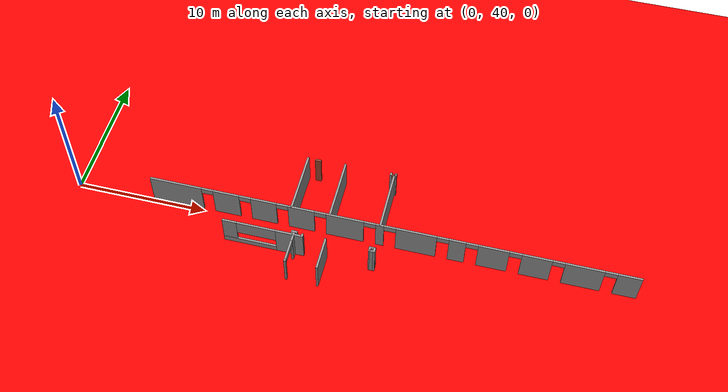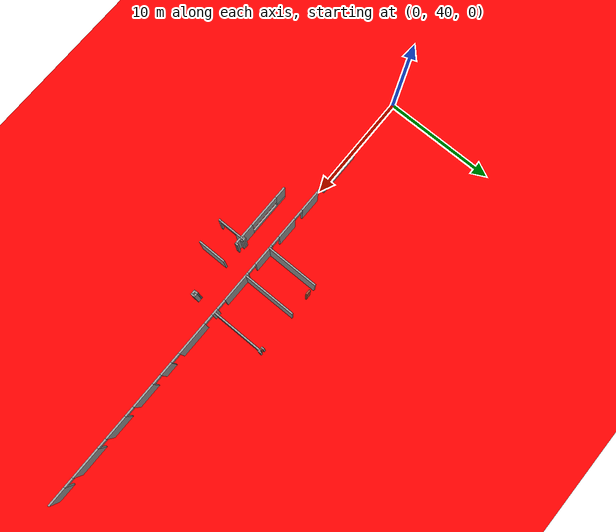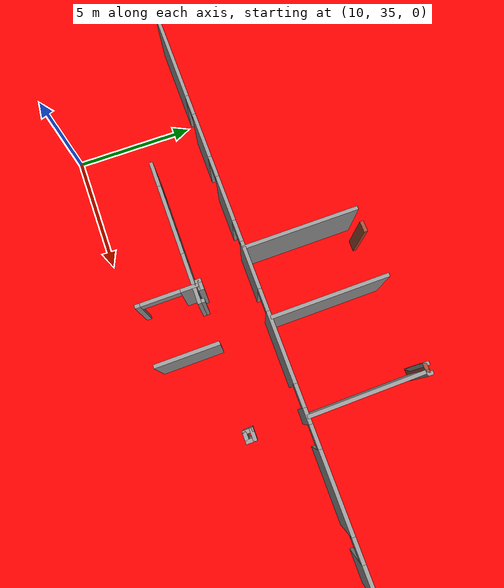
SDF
<sdf version="1.7">
 <world name="RaSpectLoc_ign">
  <model name="ground_plane">
   <static>1</static>
   <link name="link">
    <collision name="collision">
     <geometry><plane><normal>0 0 1</normal><size>100 100</size></plane></geometry>
     <surface><friction><ode><mu>100</mu><mu2>50</mu2></ode></friction></surface>
    </collision>
    <visual name="visual">
     <cast_shadows>0</cast_shadows>
     <geometry><plane><normal>0 0 1</normal><size>100 100</size></plane></geometry>
     <material><ambient>1 0 0 1</ambient><diffuse>1 0 0 1</diffuse><specular>0.1 0.1 0.1 1</specular></material>
    </visual>
   </link>
  </model>
  <model name="CVSSP">
   <pose>23.8714 24.094 0 0 -0 0</pose>
   <link name="Wall_21">
    <pose>-6.21845 12.8269 0 0 0 -1.57055</pose>
    <visual name="Wall_21_Visual_0">
     <pose>-0.893143 0 1.25 0 -0 0</pose>
     <geometry><box><size>0.719046 0.15 2.5</size></box></geometry>
     <material>
      <script><uri>file://media/materials/scripts/gazebo.material</uri><name>Gazebo/Grey</name></script>
      <ambient>0.588235 0.588235 0.588235 1</ambient>
     </material>
    </visual>
    <collision name="Wall_21_Collision_0">
     <geometry><box><size>0.719046 0.15 2.5</size></box></geometry>
     <pose>-0.893143 0 1.25 0 -0 0</pose>
    </collision>
    <visual name="Wall_21_Visual_1">
     <pose>1.15058 0 1.25 0 -0 0</pose>
     <geometry><box><size>0.204165 0.15 2.5</size></box></geometry>
     <material>
      <script><uri>file://media/materials/scripts/gazebo.material</uri><name>Gazebo/Grey</name></script>
      <ambient>0.588235 0.588235 0.588235 1</ambient>
     </material>
    </visual>
    <collision name="Wall_21_Collision_1">
     <geometry><box><size>0.204165 0.15 2.5</size></box></geometry>
     <pose>1.15058 0 1.25 0 -0 0</pose>
    </collision>
    <visual name="Wall_21_Visual_2">
     <pose>0.257441 0 2.25 0 -0 0</pose>
     <geometry><box><size>1.58212 0.15 0.5</size></box></geometry>
     <material>
      <script><uri>file://media/materials/scripts/gazebo.material</uri><name>Gazebo/Grey</name></script>
      <ambient>0.588235 0.588235 0.588235 1</ambient>
     </material>
    </visual>
    <collision name="Wall_21_Collision_2">
     <geometry><box><size>1.58212 0.15 0.5</size></box></geometry>
     <pose>0.257441 0 2.25 0 -0 0</pose>
    </collision>
   </link>
   <link name="Wall_25">
    <collision name="Wall_25_Collision">
     <geometry><box><size>2.54698 0.15 2.5</size></box></geometry>
     <pose>0 0 1.25 0 -0 0</pose>
    </collision>
    <visual name="Wall_25_Visual">
     <pose>0 0 1.25 0 -0 0</pose>
     <geometry><box><size>2.54698 0.15 2.5</size></box></geometry>
     <material>
      <script><uri>file://media/materials/scripts/gazebo.material</uri><name>Gazebo/Grey</name></script>
      <ambient>0.588235 0.588235 0.588235 1</ambient>
     </material>
    </visual>
    <pose>-3.87405 12.8463 0 0 -0 1.5708</pose>
   </link>
   <link name="Wall_315">
    <collision name="Wall_315_Collision">
     <geometry><box><size>4.75 0.15 2.5</size></box></geometry>
     <pose>0 0 1.25 0 -0 0</pose>
    </collision>
    <visual name="Wall_315_Visual">
     <pose>0 0 1.25 0 -0 0</pose>
     <geometry><box><size>4.75 0.15 2.5</size></box></geometry>
     <material>
      <script><uri>file://media/materials/scripts/gazebo.material</uri><name>Gazebo/Grey</name></script>
      <ambient>0.588235 0.588235 0.588235 1</ambient>
     </material>
    </visual>
    <pose>-7.00685 18.5251 0 0 -0 1.5708</pose>
   </link>
   <link name="Wall_318">
    <collision name="Wall_318_Collision">
     <geometry><box><size>4.79 0.15 2.5</size></box></geometry>
     <pose>0 0 1.25 0 -0 0</pose>
    </collision>
    <visual name="Wall_318_Visual">
     <pose>0 0 1.25 0 -0 0</pose>
     <geometry><box><size>4.79 0.15 2.5</size></box></geometry>
     <material>
      <script><uri>file://media/materials/scripts/gazebo.material</uri><name>Gazebo/Grey</name></script>
      <ambient>1 1 1 1</ambient>
     </material>
    </visual>
    <pose>-4.1133 18.5854 0 0 0 -1.5708</pose>
   </link>
   <link name="Wall_320">
    <collision name="Wall_320_Collision">
     <geometry><box><size>4.75 0.15 2.5</size></box></geometry>
     <pose>0 0 1.25 0 -0 0</pose>
    </collision>
    <visual name="Wall_320_Visual">
     <pose>0 0 1.25 0 -0 0</pose>
     <geometry><box><size>4.75 0.15 2.5</size></box></geometry>
     <material>
      <script><uri>file://media/materials/scripts/gazebo.material</uri><name>Gazebo/Grey</name></script>
      <ambient>0.588235 0.588235 0.588235 1</ambient>
     </material>
    </visual>
    <pose>-0.323303 18.5354 0 0 -0 1.5708</pose>
   </link>
   <link name="Wall_326">
    <collision name="Wall_326_Collision">
     <geometry><box><size>0.41 0.15 2.5</size></box></geometry>
     <pose>0 0 1.25 0 -0 0</pose>
    </collision>
    <visual name="Wall_326_Visual">
     <pose>0 0 1.25 0 -0 0</pose>
     <geometry><box><size>0.41 0.15 2.5</size></box></geometry>
     <material>
      <script><uri>file://media/materials/scripts/gazebo.material</uri><name>Gazebo/Bricks</name></script>
      <ambient>1 1 1 1</ambient>
     </material>
    </visual>
    <pose>-0.453303 20.8354 0 0 -0 3.14159</pose>
   </link>
   <link name="Wall_327">
    <collision name="Wall_327_Collision">
     <geometry><box><size>0.25 0.15 2.5</size></box></geometry>
     <pose>0 0 1.25 0 -0 0</pose>
    </collision>
    <visual name="Wall_327_Visual">
     <pose>0 0 1.25 0 -0 0</pose>
     <geometry><box><size>0.25 0.15 2.5</size></box></geometry>
     <material>
      <script><uri>file://media/materials/scripts/gazebo.material</uri><name>Gazebo/Grey</name></script>
      <ambient>1 1 1 1</ambient>
     </material>
    </visual>
    <pose>-0.583303 20.8854 0 0 -0 1.5708</pose>
   </link>
   <link name="Wall_329">
    <collision name="Wall_329_Collision">
     <geometry><box><size>0.25 0.15 2.5</size></box></geometry>
     <pose>0 0 1.25 0 -0 0</pose>
    </collision>
    <visual name="Wall_329_Visual">
     <pose>0 0 1.25 0 -0 0</pose>
     <geometry><box><size>0.25 0.15 2.5</size></box></geometry>
     <material>
      <script><uri>file://media/materials/scripts/gazebo.material</uri><name>Gazebo/Grey</name></script>
      <ambient>1 1 1 1</ambient>
     </material>
    </visual>
    <pose>-0.273303 20.8354 0 0 -0 0</pose>
   </link>
   <link name="Wall_330">
    <collision name="Wall_330_Collision">
     <geometry><box><size>0.25 0.15 2.5</size></box></geometry>
     <pose>0 0 1.25 0 -0 0</pose>
    </collision>
    <visual name="Wall_330_Visual">
     <pose>0 0 1.25 0 -0 0</pose>
     <geometry><box><size>0.25 0.15 2.5</size></box></geometry>
     <material>
      <script><uri>file://media/materials/scripts/gazebo.material</uri><name>Gazebo/Grey</name></script>
      <ambient>1 1 1 1</ambient>
     </material>
    </visual>
    <pose>-0.223303 20.8854 0 0 -0 1.5708</pose>
   </link>
   <link name="Wall_619">
    <collision name="Wall_619_Collision">
     <geometry><box><size>0.491176 0.15 2.5</size></box></geometry>
     <pose>0 0 1.25 0 -0 0</pose>
    </collision>
    <visual name="Wall_619_Visual">
     <pose>0 0 1.25 0 -0 0</pose>
     <geometry><box><size>0.491176 0.15 2.5</size></box></geometry>
     <material>
      <script><uri>file://media/materials/scripts/gazebo.material</uri><name>Gazebo/Grey</name></script>
      <ambient>1 1 1 1</ambient>
     </material>
    </visual>
    <pose>-0.431731 14.1578 0 0 -0 0</pose>
   </link>
   <link name="Wall_620">
    <collision name="Wall_620_Collision">
     <geometry><box><size>0.421785 0.15 2.5</size></box></geometry>
     <pose>0 0 1.25 0 -0 0</pose>
    </collision>
    <visual name="Wall_620_Visual">
     <pose>0 0 1.25 0 -0 0</pose>
     <geometry><box><size>0.421785 0.15 2.5</size></box></geometry>
     <material>
      <script><uri>file://media/materials/scripts/gazebo.material</uri><name>Gazebo/Grey</name></script>
      <ambient>1 1 1 1</ambient>
     </material>
    </visual>
    <pose>-0.261143 14.0219 0 0 0 -1.5708</pose>
   </link>
   <link name="Wall_621">
    <collision name="Wall_621_Collision">
     <geometry><box><size>0.479611 0.15 2.5</size></box></geometry>
     <pose>0 0 1.25 0 -0 0</pose>
    </collision>
    <visual name="Wall_621_Visual">
     <pose>0 0 1.25 0 -0 0</pose>
     <geometry><box><size>0.479611 0.15 2.5</size></box></geometry>
     <material>
      <script><uri>file://media/materials/scripts/gazebo.material</uri><name>Gazebo/Grey</name></script>
      <ambient>1 1 1 1</ambient>
     </material>
    </visual>
    <pose>-0.425949 13.8861 0 0 -0 3.14159</pose>
   </link>
   <link name="Wall_622">
    <collision name="Wall_622_Collision">
     <geometry><box><size>0.421846 0.15 2.5</size></box></geometry>
     <pose>0 0 1.25 0 -0 0</pose>
    </collision>
    <visual name="Wall_622_Visual">
     <pose>0 0 1.25 0 -0 0</pose>
     <geometry><box><size>0.421846 0.15 2.5</size></box></geometry>
     <material>
      <script><uri>file://media/materials/scripts/gazebo.material</uri><name>Gazebo/Grey</name></script>
      <ambient>1 1 1 1</ambient>
     </material>
    </visual>
    <pose>-0.593646 14.0219 0 0 -0 1.59207</pose>
   </link>
   <link name="Wall_624">
    <collision name="Wall_624_Collision">
     <geometry><box><size>0.291595 0.15 2.5</size></box></geometry>
     <pose>0 0 1.25 0 -0 0</pose>
    </collision>
    <visual name="Wall_624_Visual">
     <pose>0 0 1.25 0 -0 0</pose>
     <geometry><box><size>0.291595 0.15 2.5</size></box></geometry>
     <material>
      <script><uri>file://media/materials/scripts/gazebo.material</uri><name>Gazebo/Grey</name></script>
      <ambient>1 1 1 1</ambient>
     </material>
    </visual>
    <pose>-5.57863 13.9687 0 0 0 -1.5708</pose>
   </link>
   <link name="Wall_625">
    <pose>-8.55211 13.8979 0 0 -0 3.14159</pose>
    <visual name="Wall_625_Visual_0">
     <pose>-2.01383 0 1.25 0 -0 0</pose>
     <geometry><box><size>2.06931 0.15 2.5</size></box></geometry>
     <material>
      <script><uri>file://media/materials/scripts/gazebo.material</uri><name>Gazebo/Grey</name></script>
      <ambient>1 1 1 1</ambient>
     </material>
    </visual>
    <collision name="Wall_625_Collision_0">
     <geometry><box><size>2.06931 0.15 2.5</size></box></geometry>
     <pose>-2.01383 0 1.25 0 -0 0</pose>
    </collision>
    <visual name="Wall_625_Visual_1">
     <pose>1.03465 0 0.25 0 -0 0</pose>
     <geometry><box><size>4.02766 0.15 0.5</size></box></geometry>
     <material>
      <script><uri>file://media/materials/scripts/gazebo.material</uri><name>Gazebo/Grey</name></script>
      <ambient>1 1 1 1</ambient>
     </material>
    </visual>
    <collision name="Wall_625_Collision_1">
     <geometry><box><size>4.02766 0.15 0.5</size></box></geometry>
     <pose>1.03465 0 0.25 0 -0 0</pose>
    </collision>
    <visual name="Wall_625_Visual_2">
     <pose>2.51124 0 1.5 0 -0 0</pose>
     <geometry><box><size>1.07449 0.15 2</size></box></geometry>
     <material>
      <script><uri>file://media/materials/scripts/gazebo.material</uri><name>Gazebo/Grey</name></script>
      <ambient>1 1 1 1</ambient>
     </material>
    </visual>
    <collision name="Wall_625_Collision_2">
     <geometry><box><size>1.07449 0.15 2</size></box></geometry>
     <pose>2.51124 0 1.5 0 -0 0</pose>
    </collision>
    <visual name="Wall_625_Visual_3">
     <pose>0.497408 0 1.9 0 -0 0</pose>
     <geometry><box><size>2.95317 0.15 1.2</size></box></geometry>
     <material>
      <script><uri>file://media/materials/scripts/gazebo.material</uri><name>Gazebo/Grey</name></script>
      <ambient>1 1 1 1</ambient>
     </material>
    </visual>
    <collision name="Wall_625_Collision_3">
     <geometry><box><size>2.95317 0.15 1.2</size></box></geometry>
     <pose>0.497408 0 1.9 0 -0 0</pose>
    </collision>
   </link>
   <link name="Wall_628">
    <collision name="Wall_628_Collision">
     <geometry><box><size>0.251643 0.15 2.5</size></box></geometry>
     <pose>0 0 1.25 0 -0 0</pose>
    </collision>
    <visual name="Wall_628_Visual">
     <pose>0 0 1.25 0 -0 0</pose>
     <geometry><box><size>0.251643 0.15 2.5</size></box></geometry>
     <material>
      <script><uri>file://media/materials/scripts/gazebo.material</uri><name>Gazebo/Grey</name></script>
      <ambient>1 1 1 1</ambient>
     </material>
    </visual>
    <pose>-6.3574 14.1103 0 0 -0 1.5708</pose>
   </link>
   <link name="Wall_629">
    <collision name="Wall_629_Collision">
     <geometry><box><size>0.453417 0.15 2.5</size></box></geometry>
     <pose>0 0 1.25 0 -0 0</pose>
    </collision>
    <visual name="Wall_629_Visual">
     <pose>0 0 1.25 0 -0 0</pose>
     <geometry><box><size>0.453417 0.15 2.5</size></box></geometry>
     <material>
      <script><uri>file://media/materials/scripts/gazebo.material</uri><name>Gazebo/Grey</name></script>
      <ambient>1 1 1 1</ambient>
     </material>
    </visual>
    <pose>-6.20569 14.1608 0 0 -0 0</pose>
   </link>
   <link name="Wall_630">
    <collision name="Wall_630_Collision">
     <geometry><box><size>0.220797 0.15 2.5</size></box></geometry>
     <pose>0 0 1.25 0 -0 0</pose>
    </collision>
    <visual name="Wall_630_Visual">
     <pose>0 0 1.25 0 -0 0</pose>
     <geometry><box><size>0.220797 0.15 2.5</size></box></geometry>
     <material>
      <script><uri>file://media/materials/scripts/gazebo.material</uri><name>Gazebo/Grey</name></script>
      <ambient>1 1 1 1</ambient>
     </material>
    </visual>
    <pose>-6.05398 14.1255 0 0 0 -1.5708</pose>
   </link>
   <link name="Wall_663">
    <collision name="Wall_663_Collision">
     <geometry><box><size>0.456076 0.15 2.5</size></box></geometry>
     <pose>0 0 1.25 0 -0 0</pose>
    </collision>
    <visual name="Wall_663_Visual">
     <pose>0 0 1.25 0 -0 0</pose>
     <geometry><box><size>0.456076 0.15 2.5</size></box></geometry>
     <material>
      <script><uri>file://media/materials/scripts/gazebo.material</uri><name>Gazebo/Bricks</name></script>
      <ambient>1 1 1 1</ambient>
     </material>
    </visual>
    <pose>-6.21292 20.8145 0 0 -0 0</pose>
   </link>
   <link name="Wall_70">
    <pose>0.280393 16.1874 0 0 -0 3.14159</pose>
    <visual name="Wall_70_Visual_0">
     <pose>-17.3872 0 1.25 0 -0 0</pose>
     <geometry><box><size>1.72569 0.15 2.5</size></box></geometry>
     <material>
      <script><uri>file://media/materials/scripts/gazebo.material</uri><name>Gazebo/Grey</name></script>
      <ambient>0.588235 0.588235 0.588235 1</ambient>
     </material>
    </visual>
    <collision name="Wall_70_Collision_0">
     <geometry><box><size>1.72569 0.15 2.5</size></box></geometry>
     <pose>-17.3872 0 1.25 0 -0 0</pose>
    </collision>
    <visual name="Wall_70_Visual_1">
     <pose>-14.2239 0 1.25 0 -0 0</pose>
     <geometry><box><size>2.8009 0.15 2.5</size></box></geometry>
     <material>
      <script><uri>file://media/materials/scripts/gazebo.material</uri><name>Gazebo/Grey</name></script>
      <ambient>0.588235 0.588235 0.588235 1</ambient>
     </material>
    </visual>
    <collision name="Wall_70_Collision_1">
     <geometry><box><size>2.8009 0.15 2.5</size></box></geometry>
     <pose>-14.2239 0 1.25 0 -0 0</pose>
    </collision>
    <visual name="Wall_70_Visual_2">
     <pose>-10.8352 0 1.25 0 -0 0</pose>
     <geometry><box><size>2.17637 0.15 2.5</size></box></geometry>
     <material>
      <script><uri>file://media/materials/scripts/gazebo.material</uri><name>Gazebo/Grey</name></script>
      <ambient>0.588235 0.588235 0.588235 1</ambient>
     </material>
    </visual>
    <collision name="Wall_70_Collision_2">
     <geometry><box><size>2.17637 0.15 2.5</size></box></geometry>
     <pose>-10.8352 0 1.25 0 -0 0</pose>
    </collision>
    <visual name="Wall_70_Visual_3">
     <pose>-7.72416 0 1.25 0 -0 0</pose>
     <geometry><box><size>2.24576 0.15 2.5</size></box></geometry>
     <material>
      <script><uri>file://media/materials/scripts/gazebo.material</uri><name>Gazebo/Grey</name></script>
      <ambient>0.588235 0.588235 0.588235 1</ambient>
     </material>
    </visual>
    <collision name="Wall_70_Collision_3">
     <geometry><box><size>2.24576 0.15 2.5</size></box></geometry>
     <pose>-7.72416 0 1.25 0 -0 0</pose>
    </collision>
    <visual name="Wall_70_Visual_4">
     <pose>-5.08727 0 1.25 0 -0 0</pose>
     <geometry><box><size>1.22802 0.15 2.5</size></box></geometry>
     <material>
      <script><uri>file://media/materials/scripts/gazebo.material</uri><name>Gazebo/Grey</name></script>
      <ambient>0.588235 0.588235 0.588235 1</ambient>
     </material>
    </visual>
    <collision name="Wall_70_Collision_4">
     <geometry><box><size>1.22802 0.15 2.5</size></box></geometry>
     <pose>-5.08727 0 1.25 0 -0 0</pose>
    </collision>
    <visual name="Wall_70_Visual_5">
     <pose>-2.06873 0 1.25 0 -0 0</pose>
     <geometry><box><size>3.00907 0.15 2.5</size></box></geometry>
     <material>
      <script><uri>file://media/materials/scripts/gazebo.material</uri><name>Gazebo/Grey</name></script>
      <ambient>0.588235 0.588235 0.588235 1</ambient>
     </material>
    </visual>
    <collision name="Wall_70_Collision_5">
     <geometry><box><size>3.00907 0.15 2.5</size></box></geometry>
     <pose>-2.06873 0 1.25 0 -0 0</pose>
    </collision>
    <visual name="Wall_70_Visual_6">
     <pose>0.637556 0 1.25 0 -0 0</pose>
     <geometry><box><size>0.60349 0.15 2.5</size></box></geometry>
     <material>
      <script><uri>file://media/materials/scripts/gazebo.material</uri><name>Gazebo/Grey</name></script>
      <ambient>0.588235 0.588235 0.588235 1</ambient>
     </material>
    </visual>
    <collision name="Wall_70_Collision_6">
     <geometry><box><size>0.60349 0.15 2.5</size></box></geometry>
     <pose>0.637556 0 1.25 0 -0 0</pose>
    </collision>
    <visual name="Wall_70_Visual_7">
     <pose>3.25131 0 1.25 0 -0 0</pose>
     <geometry><box><size>2.82403 0.15 2.5</size></box></geometry>
     <material>
      <script><uri>file://media/materials/scripts/gazebo.material</uri><name>Gazebo/Grey</name></script>
      <ambient>0.588235 0.588235 0.588235 1</ambient>
     </material>
    </visual>
    <collision name="Wall_70_Collision_7">
     <geometry><box><size>2.82403 0.15 2.5</size></box></geometry>
     <pose>3.25131 0 1.25 0 -0 0</pose>
    </collision>
    <visual name="Wall_70_Visual_8">
     <pose>6.55899 0 1.25 0 -0 0</pose>
     <geometry><box><size>1.99133 0.15 2.5</size></box></geometry>
     <material>
      <script><uri>file://media/materials/scripts/gazebo.material</uri><name>Gazebo/Grey</name></script>
      <ambient>0.588235 0.588235 0.588235 1</ambient>
     </material>
    </visual>
    <collision name="Wall_70_Collision_8">
     <geometry><box><size>1.99133 0.15 2.5</size></box></geometry>
     <pose>6.55899 0 1.25 0 -0 0</pose>
    </collision>
    <visual name="Wall_70_Visual_9">
     <pose>9.43875 0 1.25 0 -0 0</pose>
     <geometry><box><size>1.9682 0.15 2.5</size></box></geometry>
     <material>
      <script><uri>file://media/materials/scripts/gazebo.material</uri><name>Gazebo/Grey</name></script>
      <ambient>0.588235 0.588235 0.588235 1</ambient>
     </material>
    </visual>
    <collision name="Wall_70_Collision_9">
     <geometry><box><size>1.9682 0.15 2.5</size></box></geometry>
     <pose>9.43875 0 1.25 0 -0 0</pose>
    </collision>
    <visual name="Wall_70_Visual_10">
     <pose>12.3301 0 1.25 0 -0 0</pose>
     <geometry><box><size>2.01446 0.15 2.5</size></box></geometry>
     <material>
      <script><uri>file://media/materials/scripts/gazebo.material</uri><name>Gazebo/Grey</name></script>
      <ambient>0.588235 0.588235 0.588235 1</ambient>
     </material>
    </visual>
    <collision name="Wall_70_Collision_10">
     <geometry><box><size>2.01446 0.15 2.5</size></box></geometry>
     <pose>12.3301 0 1.25 0 -0 0</pose>
    </collision>
    <visual name="Wall_70_Visual_11">
     <pose>16.2437 0 1.25 0 -0 0</pose>
     <geometry><box><size>4.01269 0.15 2.5</size></box></geometry>
     <material>
      <script><uri>file://media/materials/scripts/gazebo.material</uri><name>Gazebo/Grey</name></script>
      <ambient>0.588235 0.588235 0.588235 1</ambient>
     </material>
    </visual>
    <collision name="Wall_70_Collision_11">
     <geometry><box><size>4.01269 0.15 2.5</size></box></geometry>
     <pose>16.2437 0 1.25 0 -0 0</pose>
    </collision>
    <visual name="Wall_70_Visual_12">
     <pose>-16.0743 0 2.25 0 -0 0</pose>
     <geometry><box><size>0.9 0.15 0.5</size></box></geometry>
     <material>
      <script><uri>file://media/materials/scripts/gazebo.material</uri><name>Gazebo/Grey</name></script>
      <ambient>0.588235 0.588235 0.588235 1</ambient>
     </material>
    </visual>
    <collision name="Wall_70_Collision_12">
     <geometry><box><size>0.9 0.15 0.5</size></box></geometry>
     <pose>-16.0743 0 2.25 0 -0 0</pose>
    </collision>
    <visual name="Wall_70_Visual_13">
     <pose>-12.3734 0 2.25 0 -0 0</pose>
     <geometry><box><size>0.9 0.15 0.5</size></box></geometry>
     <material>
      <script><uri>file://media/materials/scripts/gazebo.material</uri><name>Gazebo/Grey</name></script>
      <ambient>0.588235 0.588235 0.588235 1</ambient>
     </material>
    </visual>
    <collision name="Wall_70_Collision_13">
     <geometry><box><size>0.9 0.15 0.5</size></box></geometry>
     <pose>-12.3734 0 2.25 0 -0 0</pose>
    </collision>
    <visual name="Wall_70_Visual_14">
     <pose>-9.29704 0 2.25 0 -0 0</pose>
     <geometry><box><size>0.9 0.15 0.5</size></box></geometry>
     <material>
      <script><uri>file://media/materials/scripts/gazebo.material</uri><name>Gazebo/Grey</name></script>
      <ambient>0.588235 0.588235 0.588235 1</ambient>
     </material>
    </visual>
    <collision name="Wall_70_Collision_14">
     <geometry><box><size>0.9 0.15 0.5</size></box></geometry>
     <pose>-9.29704 0 2.25 0 -0 0</pose>
    </collision>
    <visual name="Wall_70_Visual_15">
     <pose>-6.15128 0 2.25 0 -0 0</pose>
     <geometry><box><size>0.9 0.15 0.5</size></box></geometry>
     <material>
      <script><uri>file://media/materials/scripts/gazebo.material</uri><name>Gazebo/Grey</name></script>
      <ambient>0.588235 0.588235 0.588235 1</ambient>
     </material>
    </visual>
    <collision name="Wall_70_Collision_15">
     <geometry><box><size>0.9 0.15 0.5</size></box></geometry>
     <pose>-6.15128 0 2.25 0 -0 0</pose>
    </collision>
    <visual name="Wall_70_Visual_16">
     <pose>-4.02326 0 2.25 0 -0 0</pose>
     <geometry><box><size>0.9 0.15 0.5</size></box></geometry>
     <material>
      <script><uri>file://media/materials/scripts/gazebo.material</uri><name>Gazebo/Grey</name></script>
      <ambient>0.588235 0.588235 0.588235 1</ambient>
     </material>
    </visual>
    <collision name="Wall_70_Collision_16">
     <geometry><box><size>0.9 0.15 0.5</size></box></geometry>
     <pose>-4.02326 0 2.25 0 -0 0</pose>
    </collision>
    <visual name="Wall_70_Visual_17">
     <pose>-0.114189 0 2.25 0 -0 0</pose>
     <geometry><box><size>0.9 0.15 0.5</size></box></geometry>
     <material>
      <script><uri>file://media/materials/scripts/gazebo.material</uri><name>Gazebo/Grey</name></script>
      <ambient>0.588235 0.588235 0.588235 1</ambient>
     </material>
    </visual>
    <collision name="Wall_70_Collision_17">
     <geometry><box><size>0.9 0.15 0.5</size></box></geometry>
     <pose>-0.114189 0 2.25 0 -0 0</pose>
    </collision>
    <visual name="Wall_70_Visual_18">
     <pose>1.3893 0 2.25 0 -0 0</pose>
     <geometry><box><size>0.9 0.15 0.5</size></box></geometry>
     <material>
      <script><uri>file://media/materials/scripts/gazebo.material</uri><name>Gazebo/Grey</name></script>
      <ambient>0.588235 0.588235 0.588235 1</ambient>
     </material>
    </visual>
    <collision name="Wall_70_Collision_18">
     <geometry><box><size>0.9 0.15 0.5</size></box></geometry>
     <pose>1.3893 0 2.25 0 -0 0</pose>
    </collision>
    <visual name="Wall_70_Visual_19">
     <pose>5.11333 0 2.25 0 -0 0</pose>
     <geometry><box><size>0.9 0.15 0.5</size></box></geometry>
     <material>
      <script><uri>file://media/materials/scripts/gazebo.material</uri><name>Gazebo/Grey</name></script>
      <ambient>0.588235 0.588235 0.588235 1</ambient>
     </material>
    </visual>
    <collision name="Wall_70_Collision_19">
     <geometry><box><size>0.9 0.15 0.5</size></box></geometry>
     <pose>5.11333 0 2.25 0 -0 0</pose>
    </collision>
    <visual name="Wall_70_Visual_20">
     <pose>8.00465 0 2.25 0 -0 0</pose>
     <geometry><box><size>0.9 0.15 0.5</size></box></geometry>
     <material>
      <script><uri>file://media/materials/scripts/gazebo.material</uri><name>Gazebo/Grey</name></script>
      <ambient>0.588235 0.588235 0.588235 1</ambient>
     </material>
    </visual>
    <collision name="Wall_70_Collision_20">
     <geometry><box><size>0.9 0.15 0.5</size></box></geometry>
     <pose>8.00465 0 2.25 0 -0 0</pose>
    </collision>
    <visual name="Wall_70_Visual_21">
     <pose>10.8728 0 2.25 0 -0 0</pose>
     <geometry><box><size>0.9 0.15 0.5</size></box></geometry>
     <material>
      <script><uri>file://media/materials/scripts/gazebo.material</uri><name>Gazebo/Grey</name></script>
      <ambient>0.588235 0.588235 0.588235 1</ambient>
     </material>
    </visual>
    <collision name="Wall_70_Collision_21">
     <geometry><box><size>0.9 0.15 0.5</size></box></geometry>
     <pose>10.8728 0 2.25 0 -0 0</pose>
    </collision>
    <visual name="Wall_70_Visual_22">
     <pose>13.7873 0 2.25 0 -0 0</pose>
     <geometry><box><size>0.9 0.15 0.5</size></box></geometry>
     <material>
      <script><uri>file://media/materials/scripts/gazebo.material</uri><name>Gazebo/Grey</name></script>
      <ambient>0.588235 0.588235 0.588235 1</ambient>
     </material>
    </visual>
    <collision name="Wall_70_Collision_22">
     <geometry><box><size>0.9 0.15 0.5</size></box></geometry>
     <pose>13.7873 0 2.25 0 -0 0</pose>
    </collision>
   </link>
   <static>1</static>
  </model>
 </world>
</sdf>
